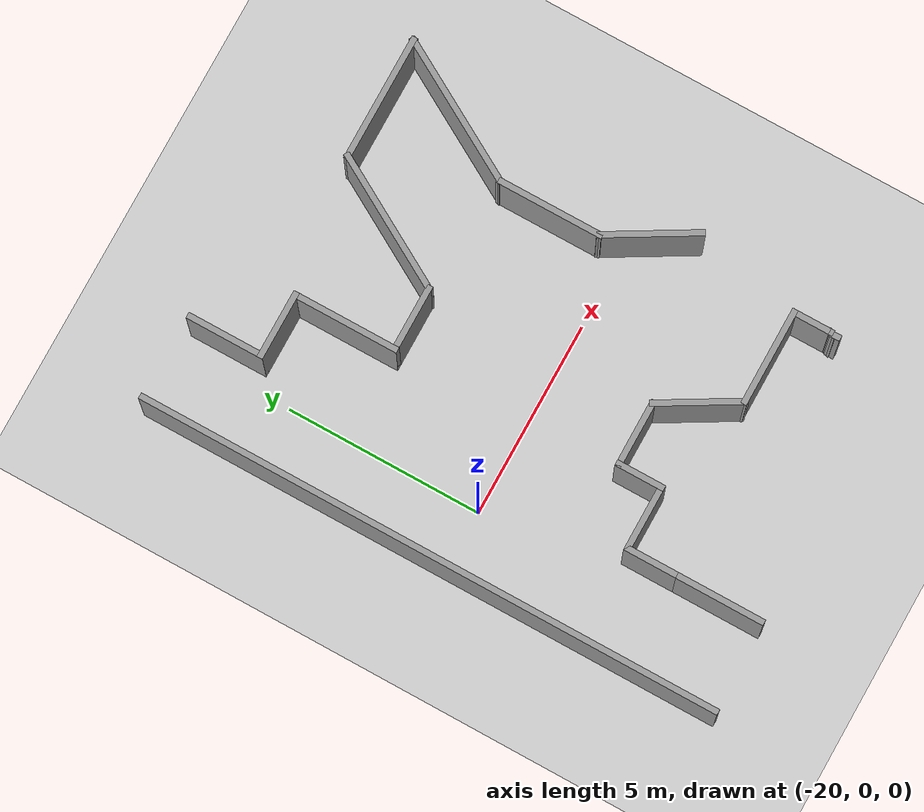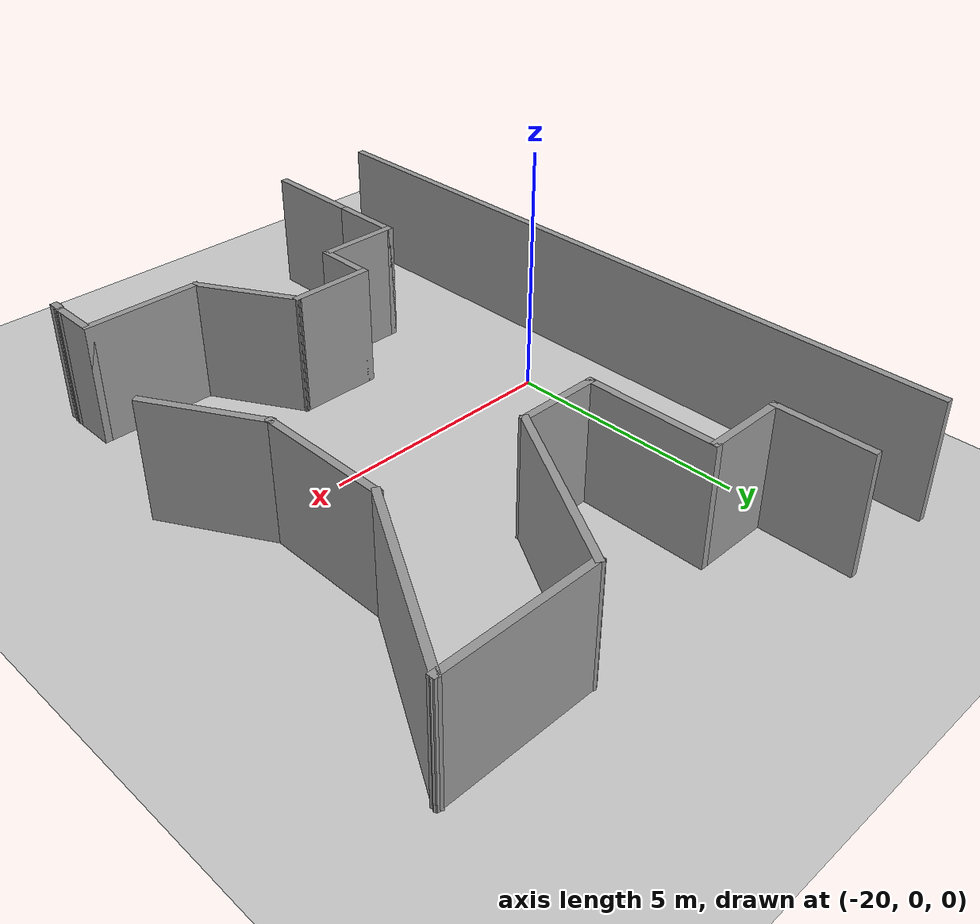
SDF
<sdf version="1.7">
 <world name="default">
  <model name="ground_plane">
   <static>1</static>
   <link name="link">
    <collision name="collision">
     <geometry><plane><normal>0 0 1</normal><size>100 100</size></plane></geometry>
     <surface>
      <contact><collide_bitmask>65535</collide_bitmask></contact>
      <friction><ode><mu>100</mu><mu2>50</mu2></ode></friction>
     </surface>
    </collision>
    <visual name="visual">
     <cast_shadows>0</cast_shadows>
     <geometry><plane><normal>0 0 1</normal><size>100 100</size></plane></geometry>
     <material>
      <script><uri>file://media/materials/scripts/gazebo.material</uri><name>Gazebo/Grey</name></script>
     </material>
    </visual>
   </link>
  </model>
  <model name="cubot">
   <link name="Wall_125">
    <pose>-13.925 -0.04968 0 0 0 -1.5708</pose>
    <visual name="Wall_125_Visual">
     <pose>0 0 1.25 0 -0 0</pose>
     <geometry><box><size>15 0.15 2.5</size></box></geometry>
     <material>
      <script><uri>file://media/materials/scripts/gazebo.material</uri><name>Gazebo/Grey</name></script>
      <ambient>1 1 1 1</ambient>
      <shader type="pixel"/>
     </material>
     <meta><layer>0</layer></meta>
    </visual>
    <collision name="Wall_125_Collision">
     <pose>0 0 1.25 0 -0 0</pose>
     <geometry><box><size>15 0.15 2.5</size></box></geometry>
     <surface>
      <friction>
       <ode><mu>1</mu><mu2>1</mu2><fdir1>0 0 0</fdir1><slip1>0</slip1><slip2>0</slip2></ode>
       <torsional>
        <coefficient>1</coefficient>
        <patch_radius>0</patch_radius>
        <surface_radius>0</surface_radius>
        <use_patch_radius>1</use_patch_radius>
        <ode><slip>0</slip></ode>
       </torsional>
      </friction>
      <bounce><restitution_coefficient>0</restitution_coefficient><threshold>1e+06</threshold></bounce>
      <contact>
       <collide_without_contact>0</collide_without_contact>
       <collide_without_contact_bitmask>1</collide_without_contact_bitmask>
       <collide_bitmask>1</collide_bitmask>
       <ode>
        <soft_cfm>0</soft_cfm>
        <soft_erp>0.2</soft_erp>
        <kp>1e+13</kp>
        <kd>1</kd>
        <max_vel>0.01</max_vel>
        <min_depth>0</min_depth>
       </ode>
       <bullet>
        <split_impulse>1</split_impulse>
        <split_impulse_penetration_threshold>-0.01</split_impulse_penetration_threshold>
        <soft_cfm>0</soft_cfm>
        <soft_erp>0.2</soft_erp>
        <kp>1e+13</kp>
        <kd>1</kd>
       </bullet>
      </contact>
     </surface>
    </collision>
   </link>
   <link name="Wall_126">
    <pose>-11.7781 6.41129 0 0 0 -1.5708</pose>
    <visual name="Wall_126_Visual">
     <pose>0 0 1.25 0 -0 0</pose>
     <geometry><box><size>2 0.15 2.5</size></box></geometry>
     <material>
      <script><uri>file://media/materials/scripts/gazebo.material</uri><name>Gazebo/Grey</name></script>
      <ambient>1 1 1 1</ambient>
      <shader type="pixel"/>
     </material>
     <meta><layer>0</layer></meta>
    </visual>
    <collision name="Wall_126_Collision">
     <pose>0 0 1.25 0 -0 0</pose>
     <geometry><box><size>2 0.15 2.5</size></box></geometry>
     <surface>
      <friction>
       <ode><mu>1</mu><mu2>1</mu2><fdir1>0 0 0</fdir1><slip1>0</slip1><slip2>0</slip2></ode>
       <torsional>
        <coefficient>1</coefficient>
        <patch_radius>0</patch_radius>
        <surface_radius>0</surface_radius>
        <use_patch_radius>1</use_patch_radius>
        <ode><slip>0</slip></ode>
       </torsional>
      </friction>
      <bounce><restitution_coefficient>0</restitution_coefficient><threshold>1e+06</threshold></bounce>
      <contact>
       <collide_without_contact>0</collide_without_contact>
       <collide_without_contact_bitmask>1</collide_without_contact_bitmask>
       <collide_bitmask>1</collide_bitmask>
       <ode>
        <soft_cfm>0</soft_cfm>
        <soft_erp>0.2</soft_erp>
        <kp>1e+13</kp>
        <kd>1</kd>
        <max_vel>0.01</max_vel>
        <min_depth>0</min_depth>
       </ode>
       <bullet>
        <split_impulse>1</split_impulse>
        <split_impulse_penetration_threshold>-0.01</split_impulse_penetration_threshold>
        <soft_cfm>0</soft_cfm>
        <soft_erp>0.2</soft_erp>
        <kp>1e+13</kp>
        <kd>1</kd>
       </bullet>
      </contact>
     </surface>
    </collision>
   </link>
   <link name="Wall_127">
    <pose>-10.9781 5.48629 0 0 -0 0</pose>
    <visual name="Wall_127_Visual">
     <pose>0 0 1.25 0 -0 0</pose>
     <geometry><box><size>1.75 0.15 2.5</size></box></geometry>
     <material>
      <script><uri>file://media/materials/scripts/gazebo.material</uri><name>Gazebo/Grey</name></script>
      <ambient>1 1 1 1</ambient>
      <shader type="pixel"/>
     </material>
     <meta><layer>0</layer></meta>
    </visual>
    <collision name="Wall_127_Collision">
     <pose>0 0 1.25 0 -0 0</pose>
     <geometry><box><size>1.75 0.15 2.5</size></box></geometry>
     <surface>
      <friction>
       <ode><mu>1</mu><mu2>1</mu2><fdir1>0 0 0</fdir1><slip1>0</slip1><slip2>0</slip2></ode>
       <torsional>
        <coefficient>1</coefficient>
        <patch_radius>0</patch_radius>
        <surface_radius>0</surface_radius>
        <use_patch_radius>1</use_patch_radius>
        <ode><slip>0</slip></ode>
       </torsional>
      </friction>
      <bounce><restitution_coefficient>0</restitution_coefficient><threshold>1e+06</threshold></bounce>
      <contact>
       <collide_without_contact>0</collide_without_contact>
       <collide_without_contact_bitmask>1</collide_without_contact_bitmask>
       <collide_bitmask>1</collide_bitmask>
       <ode>
        <soft_cfm>0</soft_cfm>
        <soft_erp>0.2</soft_erp>
        <kp>1e+13</kp>
        <kd>1</kd>
        <max_vel>0.01</max_vel>
        <min_depth>0</min_depth>
       </ode>
       <bullet>
        <split_impulse>1</split_impulse>
        <split_impulse_penetration_threshold>-0.01</split_impulse_penetration_threshold>
        <soft_cfm>0</soft_cfm>
        <soft_erp>0.2</soft_erp>
        <kp>1e+13</kp>
        <kd>1</kd>
       </bullet>
      </contact>
     </surface>
    </collision>
   </link>
   <link name="Wall_128">
    <pose>-10.1781 4.18629 0 0 0 -1.5708</pose>
    <visual name="Wall_128_Visual">
     <pose>0 0 1.25 0 -0 0</pose>
     <geometry><box><size>2.75 0.15 2.5</size></box></geometry>
     <material>
      <script><uri>file://media/materials/scripts/gazebo.material</uri><name>Gazebo/Grey</name></script>
      <ambient>1 1 1 1</ambient>
      <shader type="pixel"/>
     </material>
     <meta><layer>0</layer></meta>
    </visual>
    <collision name="Wall_128_Collision">
     <pose>0 0 1.25 0 -0 0</pose>
     <geometry><box><size>2.75 0.15 2.5</size></box></geometry>
     <surface>
      <friction>
       <ode><mu>1</mu><mu2>1</mu2><fdir1>0 0 0</fdir1><slip1>0</slip1><slip2>0</slip2></ode>
       <torsional>
        <coefficient>1</coefficient>
        <patch_radius>0</patch_radius>
        <surface_radius>0</surface_radius>
        <use_patch_radius>1</use_patch_radius>
        <ode><slip>0</slip></ode>
       </torsional>
      </friction>
      <bounce><restitution_coefficient>0</restitution_coefficient><threshold>1e+06</threshold></bounce>
      <contact>
       <collide_without_contact>0</collide_without_contact>
       <collide_without_contact_bitmask>1</collide_without_contact_bitmask>
       <collide_bitmask>1</collide_bitmask>
       <ode>
        <soft_cfm>0</soft_cfm>
        <soft_erp>0.2</soft_erp>
        <kp>1e+13</kp>
        <kd>1</kd>
        <max_vel>0.01</max_vel>
        <min_depth>0</min_depth>
       </ode>
       <bullet>
        <split_impulse>1</split_impulse>
        <split_impulse_penetration_threshold>-0.01</split_impulse_penetration_threshold>
        <soft_cfm>0</soft_cfm>
        <soft_erp>0.2</soft_erp>
        <kp>1e+13</kp>
        <kd>1</kd>
       </bullet>
      </contact>
     </surface>
    </collision>
   </link>
   <link name="Wall_129">
    <pose>-9.37808 2.88629 0 0 -0 0</pose>
    <visual name="Wall_129_Visual">
     <pose>0 0 1.25 0 -0 0</pose>
     <geometry><box><size>1.75 0.15 2.5</size></box></geometry>
     <material>
      <script><uri>file://media/materials/scripts/gazebo.material</uri><name>Gazebo/Grey</name></script>
      <ambient>1 1 1 1</ambient>
      <shader type="pixel"/>
     </material>
     <meta><layer>0</layer></meta>
    </visual>
    <collision name="Wall_129_Collision">
     <pose>0 0 1.25 0 -0 0</pose>
     <geometry><box><size>1.75 0.15 2.5</size></box></geometry>
     <surface>
      <friction>
       <ode><mu>1</mu><mu2>1</mu2><fdir1>0 0 0</fdir1><slip1>0</slip1><slip2>0</slip2></ode>
       <torsional>
        <coefficient>1</coefficient>
        <patch_radius>0</patch_radius>
        <surface_radius>0</surface_radius>
        <use_patch_radius>1</use_patch_radius>
        <ode><slip>0</slip></ode>
       </torsional>
      </friction>
      <bounce><restitution_coefficient>0</restitution_coefficient><threshold>1e+06</threshold></bounce>
      <contact>
       <collide_without_contact>0</collide_without_contact>
       <collide_without_contact_bitmask>1</collide_without_contact_bitmask>
       <collide_bitmask>1</collide_bitmask>
       <ode>
        <soft_cfm>0</soft_cfm>
        <soft_erp>0.2</soft_erp>
        <kp>1e+13</kp>
        <kd>1</kd>
        <max_vel>0.01</max_vel>
        <min_depth>0</min_depth>
       </ode>
       <bullet>
        <split_impulse>1</split_impulse>
        <split_impulse_penetration_threshold>-0.01</split_impulse_penetration_threshold>
        <soft_cfm>0</soft_cfm>
        <soft_erp>0.2</soft_erp>
        <kp>1e+13</kp>
        <kd>1</kd>
       </bullet>
      </contact>
     </surface>
    </collision>
   </link>
   <link name="Wall_130">
    <pose>-7.67808 4.44513 0 0 -0 1.0472</pose>
    <visual name="Wall_130_Visual">
     <pose>0 0 1.25 0 -0 0</pose>
     <geometry><box><size>3.75 0.15 2.5</size></box></geometry>
     <material>
      <script><uri>file://media/materials/scripts/gazebo.material</uri><name>Gazebo/Grey</name></script>
      <ambient>1 1 1 1</ambient>
      <shader type="pixel"/>
     </material>
     <meta><layer>0</layer></meta>
    </visual>
    <collision name="Wall_130_Collision">
     <pose>0 0 1.25 0 -0 0</pose>
     <geometry><box><size>3.75 0.15 2.5</size></box></geometry>
     <surface>
      <friction>
       <ode><mu>1</mu><mu2>1</mu2><fdir1>0 0 0</fdir1><slip1>0</slip1><slip2>0</slip2></ode>
       <torsional>
        <coefficient>1</coefficient>
        <patch_radius>0</patch_radius>
        <surface_radius>0</surface_radius>
        <use_patch_radius>1</use_patch_radius>
        <ode><slip>0</slip></ode>
       </torsional>
      </friction>
      <bounce><restitution_coefficient>0</restitution_coefficient><threshold>1e+06</threshold></bounce>
      <contact>
       <collide_without_contact>0</collide_without_contact>
       <collide_without_contact_bitmask>1</collide_without_contact_bitmask>
       <collide_bitmask>1</collide_bitmask>
       <ode>
        <soft_cfm>0</soft_cfm>
        <soft_erp>0.2</soft_erp>
        <kp>1e+13</kp>
        <kd>1</kd>
        <max_vel>0.01</max_vel>
        <min_depth>0</min_depth>
       </ode>
       <bullet>
        <split_impulse>1</split_impulse>
        <split_impulse_penetration_threshold>-0.01</split_impulse_penetration_threshold>
        <soft_cfm>0</soft_cfm>
        <soft_erp>0.2</soft_erp>
        <kp>1e+13</kp>
        <kd>1</kd>
       </bullet>
      </contact>
     </surface>
    </collision>
   </link>
   <link name="Wall_131">
    <pose>-5.22808 6.00398 0 0 -0 0</pose>
    <visual name="Wall_131_Visual">
     <pose>0 0 1.25 0 -0 0</pose>
     <geometry><box><size>3.25 0.15 2.5</size></box></geometry>
     <material>
      <script><uri>file://media/materials/scripts/gazebo.material</uri><name>Gazebo/Grey</name></script>
      <ambient>1 1 1 1</ambient>
      <shader type="pixel"/>
     </material>
     <meta><layer>0</layer></meta>
    </visual>
    <collision name="Wall_131_Collision">
     <pose>0 0 1.25 0 -0 0</pose>
     <geometry><box><size>3.25 0.15 2.5</size></box></geometry>
     <surface>
      <friction>
       <ode><mu>1</mu><mu2>1</mu2><fdir1>0 0 0</fdir1><slip1>0</slip1><slip2>0</slip2></ode>
       <torsional>
        <coefficient>1</coefficient>
        <patch_radius>0</patch_radius>
        <surface_radius>0</surface_radius>
        <use_patch_radius>1</use_patch_radius>
        <ode><slip>0</slip></ode>
       </torsional>
      </friction>
      <bounce><restitution_coefficient>0</restitution_coefficient><threshold>1e+06</threshold></bounce>
      <contact>
       <collide_without_contact>0</collide_without_contact>
       <collide_without_contact_bitmask>1</collide_without_contact_bitmask>
       <collide_bitmask>1</collide_bitmask>
       <ode>
        <soft_cfm>0</soft_cfm>
        <soft_erp>0.2</soft_erp>
        <kp>1e+13</kp>
        <kd>1</kd>
        <max_vel>0.01</max_vel>
        <min_depth>0</min_depth>
       </ode>
       <bullet>
        <split_impulse>1</split_impulse>
        <split_impulse_penetration_threshold>-0.01</split_impulse_penetration_threshold>
        <soft_cfm>0</soft_cfm>
        <soft_erp>0.2</soft_erp>
        <kp>1e+13</kp>
        <kd>1</kd>
       </bullet>
      </contact>
     </surface>
    </collision>
   </link>
   <link name="Wall_132">
    <pose>-4.64058 4.33688 0 0 0 -2.0944</pose>
    <visual name="Wall_132_Visual">
     <pose>0 0 1.25 0 -0 0</pose>
     <geometry><box><size>4 0.15 2.5</size></box></geometry>
     <material>
      <script><uri>file://media/materials/scripts/gazebo.material</uri><name>Gazebo/Grey</name></script>
      <ambient>1 1 1 1</ambient>
      <shader type="pixel"/>
     </material>
     <meta><layer>0</layer></meta>
    </visual>
    <collision name="Wall_132_Collision">
     <pose>0 0 1.25 0 -0 0</pose>
     <geometry><box><size>4 0.15 2.5</size></box></geometry>
     <surface>
      <friction>
       <ode><mu>1</mu><mu2>1</mu2><fdir1>0 0 0</fdir1><slip1>0</slip1><slip2>0</slip2></ode>
       <torsional>
        <coefficient>1</coefficient>
        <patch_radius>0</patch_radius>
        <surface_radius>0</surface_radius>
        <use_patch_radius>1</use_patch_radius>
        <ode><slip>0</slip></ode>
       </torsional>
      </friction>
      <bounce><restitution_coefficient>0</restitution_coefficient><threshold>1e+06</threshold></bounce>
      <contact>
       <collide_without_contact>0</collide_without_contact>
       <collide_without_contact_bitmask>1</collide_without_contact_bitmask>
       <collide_bitmask>1</collide_bitmask>
       <ode>
        <soft_cfm>0</soft_cfm>
        <soft_erp>0.2</soft_erp>
        <kp>1e+13</kp>
        <kd>1</kd>
        <max_vel>0.01</max_vel>
        <min_depth>0</min_depth>
       </ode>
       <bullet>
        <split_impulse>1</split_impulse>
        <split_impulse_penetration_threshold>-0.01</split_impulse_penetration_threshold>
        <soft_cfm>0</soft_cfm>
        <soft_erp>0.2</soft_erp>
        <kp>1e+13</kp>
        <kd>1</kd>
       </bullet>
      </contact>
     </surface>
    </collision>
   </link>
   <link name="Wall_133">
    <pose>-5.60308 1.36978 0 0 0 -1.5708</pose>
    <visual name="Wall_133_Visual">
     <pose>0 0 1.25 0 -0 0</pose>
     <geometry><box><size>2.75 0.15 2.5</size></box></geometry>
     <material>
      <script><uri>file://media/materials/scripts/gazebo.material</uri><name>Gazebo/Grey</name></script>
      <ambient>1 1 1 1</ambient>
      <shader type="pixel"/>
     </material>
     <meta><layer>0</layer></meta>
    </visual>
    <collision name="Wall_133_Collision">
     <pose>0 0 1.25 0 -0 0</pose>
     <geometry><box><size>2.75 0.15 2.5</size></box></geometry>
     <surface>
      <friction>
       <ode><mu>1</mu><mu2>1</mu2><fdir1>0 0 0</fdir1><slip1>0</slip1><slip2>0</slip2></ode>
       <torsional>
        <coefficient>1</coefficient>
        <patch_radius>0</patch_radius>
        <surface_radius>0</surface_radius>
        <use_patch_radius>1</use_patch_radius>
        <ode><slip>0</slip></ode>
       </torsional>
      </friction>
      <bounce><restitution_coefficient>0</restitution_coefficient><threshold>1e+06</threshold></bounce>
      <contact>
       <collide_without_contact>0</collide_without_contact>
       <collide_without_contact_bitmask>1</collide_without_contact_bitmask>
       <collide_bitmask>1</collide_bitmask>
       <ode>
        <soft_cfm>0</soft_cfm>
        <soft_erp>0.2</soft_erp>
        <kp>1e+13</kp>
        <kd>1</kd>
        <max_vel>0.01</max_vel>
        <min_depth>0</min_depth>
       </ode>
       <bullet>
        <split_impulse>1</split_impulse>
        <split_impulse_penetration_threshold>-0.01</split_impulse_penetration_threshold>
        <soft_cfm>0</soft_cfm>
        <soft_erp>0.2</soft_erp>
        <kp>1e+13</kp>
        <kd>1</kd>
       </bullet>
      </contact>
     </surface>
    </collision>
   </link>
   <link name="Wall_134">
    <pose>-5.01558 -0.947797 0 0 0 -1.0472</pose>
    <visual name="Wall_134_Visual">
     <pose>0 0 1.25 0 -0 0</pose>
     <geometry><box><size>2.5 0.15 2.5</size></box></geometry>
     <material>
      <script><uri>file://media/materials/scripts/gazebo.material</uri><name>Gazebo/Grey</name></script>
      <ambient>1 1 1 1</ambient>
      <shader type="pixel"/>
     </material>
     <meta><layer>0</layer></meta>
    </visual>
    <collision name="Wall_134_Collision">
     <pose>0 0 1.25 0 -0 0</pose>
     <geometry><box><size>2.5 0.15 2.5</size></box></geometry>
     <surface>
      <friction>
       <ode><mu>1</mu><mu2>1</mu2><fdir1>0 0 0</fdir1><slip1>0</slip1><slip2>0</slip2></ode>
       <torsional>
        <coefficient>1</coefficient>
        <patch_radius>0</patch_radius>
        <surface_radius>0</surface_radius>
        <use_patch_radius>1</use_patch_radius>
        <ode><slip>0</slip></ode>
       </torsional>
      </friction>
      <bounce><restitution_coefficient>0</restitution_coefficient><threshold>1e+06</threshold></bounce>
      <contact>
       <collide_without_contact>0</collide_without_contact>
       <collide_without_contact_bitmask>1</collide_without_contact_bitmask>
       <collide_bitmask>1</collide_bitmask>
       <ode>
        <soft_cfm>0</soft_cfm>
        <soft_erp>0.2</soft_erp>
        <kp>1e+13</kp>
        <kd>1</kd>
        <max_vel>0.01</max_vel>
        <min_depth>0</min_depth>
       </ode>
       <bullet>
        <split_impulse>1</split_impulse>
        <split_impulse_penetration_threshold>-0.01</split_impulse_penetration_threshold>
        <soft_cfm>0</soft_cfm>
        <soft_erp>0.2</soft_erp>
        <kp>1e+13</kp>
        <kd>1</kd>
       </bullet>
      </contact>
     </surface>
    </collision>
   </link>
   <link name="Wall_141">
    <pose>-11.6355 -6.36384 0 0 -0 1.5708</pose>
    <visual name="Wall_141_Visual">
     <pose>0 0 1.25 0 -0 0</pose>
     <geometry><box><size>2.25 0.15 2.5</size></box></geometry>
     <material>
      <script><uri>file://media/materials/scripts/gazebo.material</uri><name>Gazebo/Grey</name></script>
      <ambient>1 1 1 1</ambient>
      <shader type="pixel"/>
     </material>
     <meta><layer>0</layer></meta>
    </visual>
    <collision name="Wall_141_Collision">
     <pose>0 0 1.25 0 -0 0</pose>
     <geometry><box><size>2.25 0.15 2.5</size></box></geometry>
     <surface>
      <friction>
       <ode><mu>1</mu><mu2>1</mu2><fdir1>0 0 0</fdir1><slip1>0</slip1><slip2>0</slip2></ode>
       <torsional>
        <coefficient>1</coefficient>
        <patch_radius>0</patch_radius>
        <surface_radius>0</surface_radius>
        <use_patch_radius>1</use_patch_radius>
        <ode><slip>0</slip></ode>
       </torsional>
      </friction>
      <bounce><restitution_coefficient>0</restitution_coefficient><threshold>1e+06</threshold></bounce>
      <contact>
       <collide_without_contact>0</collide_without_contact>
       <collide_without_contact_bitmask>1</collide_without_contact_bitmask>
       <collide_bitmask>1</collide_bitmask>
       <ode>
        <soft_cfm>0</soft_cfm>
        <soft_erp>0.2</soft_erp>
        <kp>1e+13</kp>
        <kd>1</kd>
        <max_vel>0.01</max_vel>
        <min_depth>0</min_depth>
       </ode>
       <bullet>
        <split_impulse>1</split_impulse>
        <split_impulse_penetration_threshold>-0.01</split_impulse_penetration_threshold>
        <soft_cfm>0</soft_cfm>
        <soft_erp>0.2</soft_erp>
        <kp>1e+13</kp>
        <kd>1</kd>
       </bullet>
      </contact>
     </surface>
    </collision>
   </link>
   <link name="Wall_142">
    <pose>-11.6355 -4.63884 0 0 -0 1.5708</pose>
    <visual name="Wall_142_Visual">
     <pose>0 0 1.25 0 -0 0</pose>
     <geometry><box><size>1.5 0.15 2.5</size></box></geometry>
     <material>
      <script><uri>file://media/materials/scripts/gazebo.material</uri><name>Gazebo/Grey</name></script>
      <ambient>1 1 1 1</ambient>
      <shader type="pixel"/>
     </material>
     <meta><layer>0</layer></meta>
    </visual>
    <collision name="Wall_142_Collision">
     <pose>0 0 1.25 0 -0 0</pose>
     <geometry><box><size>1.5 0.15 2.5</size></box></geometry>
     <surface>
      <friction>
       <ode><mu>1</mu><mu2>1</mu2><fdir1>0 0 0</fdir1><slip1>0</slip1><slip2>0</slip2></ode>
       <torsional>
        <coefficient>1</coefficient>
        <patch_radius>0</patch_radius>
        <surface_radius>0</surface_radius>
        <use_patch_radius>1</use_patch_radius>
        <ode><slip>0</slip></ode>
       </torsional>
      </friction>
      <bounce><restitution_coefficient>0</restitution_coefficient><threshold>1e+06</threshold></bounce>
      <contact>
       <collide_without_contact>0</collide_without_contact>
       <collide_without_contact_bitmask>1</collide_without_contact_bitmask>
       <collide_bitmask>1</collide_bitmask>
       <ode>
        <soft_cfm>0</soft_cfm>
        <soft_erp>0.2</soft_erp>
        <kp>1e+13</kp>
        <kd>1</kd>
        <max_vel>0.01</max_vel>
        <min_depth>0</min_depth>
       </ode>
       <bullet>
        <split_impulse>1</split_impulse>
        <split_impulse_penetration_threshold>-0.01</split_impulse_penetration_threshold>
        <soft_cfm>0</soft_cfm>
        <soft_erp>0.2</soft_erp>
        <kp>1e+13</kp>
        <kd>1</kd>
       </bullet>
      </contact>
     </surface>
    </collision>
   </link>
   <link name="Wall_143">
    <pose>-10.8355 -3.96384 0 0 -0 0</pose>
    <visual name="Wall_143_Visual">
     <pose>0 0 1.25 0 -0 0</pose>
     <geometry><box><size>1.75 0.15 2.5</size></box></geometry>
     <material>
      <script><uri>file://media/materials/scripts/gazebo.material</uri><name>Gazebo/Grey</name></script>
      <ambient>1 1 1 1</ambient>
      <shader type="pixel"/>
     </material>
     <meta><layer>0</layer></meta>
    </visual>
    <collision name="Wall_143_Collision">
     <pose>0 0 1.25 0 -0 0</pose>
     <geometry><box><size>1.75 0.15 2.5</size></box></geometry>
     <surface>
      <friction>
       <ode><mu>1</mu><mu2>1</mu2><fdir1>0 0 0</fdir1><slip1>0</slip1><slip2>0</slip2></ode>
       <torsional>
        <coefficient>1</coefficient>
        <patch_radius>0</patch_radius>
        <surface_radius>0</surface_radius>
        <use_patch_radius>1</use_patch_radius>
        <ode><slip>0</slip></ode>
       </torsional>
      </friction>
      <bounce><restitution_coefficient>0</restitution_coefficient><threshold>1e+06</threshold></bounce>
      <contact>
       <collide_without_contact>0</collide_without_contact>
       <collide_without_contact_bitmask>1</collide_without_contact_bitmask>
       <collide_bitmask>1</collide_bitmask>
       <ode>
        <soft_cfm>0</soft_cfm>
        <soft_erp>0.2</soft_erp>
        <kp>1e+13</kp>
        <kd>1</kd>
        <max_vel>0.01</max_vel>
        <min_depth>0</min_depth>
       </ode>
       <bullet>
        <split_impulse>1</split_impulse>
        <split_impulse_penetration_threshold>-0.01</split_impulse_penetration_threshold>
        <soft_cfm>0</soft_cfm>
        <soft_erp>0.2</soft_erp>
        <kp>1e+13</kp>
        <kd>1</kd>
       </bullet>
      </contact>
     </surface>
    </collision>
   </link>
   <link name="Wall_144">
    <pose>-10.0355 -3.41384 0 0 -0 1.5708</pose>
    <visual name="Wall_144_Visual">
     <pose>0 0 1.25 0 -0 0</pose>
     <geometry><box><size>1.25 0.15 2.5</size></box></geometry>
     <material>
      <script><uri>file://media/materials/scripts/gazebo.material</uri><name>Gazebo/Grey</name></script>
      <ambient>1 1 1 1</ambient>
      <shader type="pixel"/>
     </material>
     <meta><layer>0</layer></meta>
    </visual>
    <collision name="Wall_144_Collision">
     <pose>0 0 1.25 0 -0 0</pose>
     <geometry><box><size>1.25 0.15 2.5</size></box></geometry>
     <surface>
      <friction>
       <ode><mu>1</mu><mu2>1</mu2><fdir1>0 0 0</fdir1><slip1>0</slip1><slip2>0</slip2></ode>
       <torsional>
        <coefficient>1</coefficient>
        <patch_radius>0</patch_radius>
        <surface_radius>0</surface_radius>
        <use_patch_radius>1</use_patch_radius>
        <ode><slip>0</slip></ode>
       </torsional>
      </friction>
      <bounce><restitution_coefficient>0</restitution_coefficient><threshold>1e+06</threshold></bounce>
      <contact>
       <collide_without_contact>0</collide_without_contact>
       <collide_without_contact_bitmask>1</collide_without_contact_bitmask>
       <collide_bitmask>1</collide_bitmask>
       <ode>
        <soft_cfm>0</soft_cfm>
        <soft_erp>0.2</soft_erp>
        <kp>1e+13</kp>
        <kd>1</kd>
        <max_vel>0.01</max_vel>
        <min_depth>0</min_depth>
       </ode>
       <bullet>
        <split_impulse>1</split_impulse>
        <split_impulse_penetration_threshold>-0.01</split_impulse_penetration_threshold>
        <soft_cfm>0</soft_cfm>
        <soft_erp>0.2</soft_erp>
        <kp>1e+13</kp>
        <kd>1</kd>
       </bullet>
      </contact>
     </surface>
    </collision>
   </link>
   <link name="Wall_145">
    <pose>-9.2355 -2.86384 0 0 -0 0</pose>
    <visual name="Wall_145_Visual">
     <pose>0 0 1.25 0 -0 0</pose>
     <geometry><box><size>1.75 0.15 2.5</size></box></geometry>
     <material>
      <script><uri>file://media/materials/scripts/gazebo.material</uri><name>Gazebo/Grey</name></script>
      <ambient>1 1 1 1</ambient>
      <shader type="pixel"/>
     </material>
     <meta><layer>0</layer></meta>
    </visual>
    <collision name="Wall_145_Collision">
     <pose>0 0 1.25 0 -0 0</pose>
     <geometry><box><size>1.75 0.15 2.5</size></box></geometry>
     <surface>
      <friction>
       <ode><mu>1</mu><mu2>1</mu2><fdir1>0 0 0</fdir1><slip1>0</slip1><slip2>0</slip2></ode>
       <torsional>
        <coefficient>1</coefficient>
        <patch_radius>0</patch_radius>
        <surface_radius>0</surface_radius>
        <use_patch_radius>1</use_patch_radius>
        <ode><slip>0</slip></ode>
       </torsional>
      </friction>
      <bounce><restitution_coefficient>0</restitution_coefficient><threshold>1e+06</threshold></bounce>
      <contact>
       <collide_without_contact>0</collide_without_contact>
       <collide_without_contact_bitmask>1</collide_without_contact_bitmask>
       <collide_bitmask>1</collide_bitmask>
       <ode>
        <soft_cfm>0</soft_cfm>
        <soft_erp>0.2</soft_erp>
        <kp>1e+13</kp>
        <kd>1</kd>
        <max_vel>0.01</max_vel>
        <min_depth>0</min_depth>
       </ode>
       <bullet>
        <split_impulse>1</split_impulse>
        <split_impulse_penetration_threshold>-0.01</split_impulse_penetration_threshold>
        <soft_cfm>0</soft_cfm>
        <soft_erp>0.2</soft_erp>
        <kp>1e+13</kp>
        <kd>1</kd>
       </bullet>
      </contact>
     </surface>
    </collision>
   </link>
   <link name="Wall_146">
    <pose>-7.9105 -3.77316 0 0 0 -1.0472</pose>
    <visual name="Wall_146_Visual">
     <pose>0 0 1.25 0 -0 0</pose>
     <geometry><box><size>2.25 0.15 2.5</size></box></geometry>
     <material>
      <script><uri>file://media/materials/scripts/gazebo.material</uri><name>Gazebo/Grey</name></script>
      <ambient>1 1 1 1</ambient>
      <shader type="pixel"/>
     </material>
     <meta><layer>0</layer></meta>
    </visual>
    <collision name="Wall_146_Collision">
     <pose>0 0 1.25 0 -0 0</pose>
     <geometry><box><size>2.25 0.15 2.5</size></box></geometry>
     <surface>
      <friction>
       <ode><mu>1</mu><mu2>1</mu2><fdir1>0 0 0</fdir1><slip1>0</slip1><slip2>0</slip2></ode>
       <torsional>
        <coefficient>1</coefficient>
        <patch_radius>0</patch_radius>
        <surface_radius>0</surface_radius>
        <use_patch_radius>1</use_patch_radius>
        <ode><slip>0</slip></ode>
       </torsional>
      </friction>
      <bounce><restitution_coefficient>0</restitution_coefficient><threshold>1e+06</threshold></bounce>
      <contact>
       <collide_without_contact>0</collide_without_contact>
       <collide_without_contact_bitmask>1</collide_without_contact_bitmask>
       <collide_bitmask>1</collide_bitmask>
       <ode>
        <soft_cfm>0</soft_cfm>
        <soft_erp>0.2</soft_erp>
        <kp>1e+13</kp>
        <kd>1</kd>
        <max_vel>0.01</max_vel>
        <min_depth>0</min_depth>
       </ode>
       <bullet>
        <split_impulse>1</split_impulse>
        <split_impulse_penetration_threshold>-0.01</split_impulse_penetration_threshold>
        <soft_cfm>0</soft_cfm>
        <soft_erp>0.2</soft_erp>
        <kp>1e+13</kp>
        <kd>1</kd>
       </bullet>
      </contact>
     </surface>
    </collision>
   </link>
   <link name="Wall_147">
    <pose>-6.2105 -4.68249 0 0 -0 0</pose>
    <visual name="Wall_147_Visual">
     <pose>0 0 1.25 0 -0 0</pose>
     <geometry><box><size>2.5 0.15 2.5</size></box></geometry>
     <material>
      <script><uri>file://media/materials/scripts/gazebo.material</uri><name>Gazebo/Grey</name></script>
      <ambient>1 1 1 1</ambient>
      <shader type="pixel"/>
     </material>
     <meta><layer>0</layer></meta>
    </visual>
    <collision name="Wall_147_Collision">
     <pose>0 0 1.25 0 -0 0</pose>
     <geometry><box><size>2.5 0.15 2.5</size></box></geometry>
     <surface>
      <friction>
       <ode><mu>1</mu><mu2>1</mu2><fdir1>0 0 0</fdir1><slip1>0</slip1><slip2>0</slip2></ode>
       <torsional>
        <coefficient>1</coefficient>
        <patch_radius>0</patch_radius>
        <surface_radius>0</surface_radius>
        <use_patch_radius>1</use_patch_radius>
        <ode><slip>0</slip></ode>
       </torsional>
      </friction>
      <bounce><restitution_coefficient>0</restitution_coefficient><threshold>1e+06</threshold></bounce>
      <contact>
       <collide_without_contact>0</collide_without_contact>
       <collide_without_contact_bitmask>1</collide_without_contact_bitmask>
       <collide_bitmask>1</collide_bitmask>
       <ode>
        <soft_cfm>0</soft_cfm>
        <soft_erp>0.2</soft_erp>
        <kp>1e+13</kp>
        <kd>1</kd>
        <max_vel>0.01</max_vel>
        <min_depth>0</min_depth>
       </ode>
       <bullet>
        <split_impulse>1</split_impulse>
        <split_impulse_penetration_threshold>-0.01</split_impulse_penetration_threshold>
        <soft_cfm>0</soft_cfm>
        <soft_erp>0.2</soft_erp>
        <kp>1e+13</kp>
        <kd>1</kd>
       </bullet>
      </contact>
     </surface>
    </collision>
   </link>
   <link name="Wall_150">
    <pose>-5.0355 -5.10749 0 0 0 -1.5708</pose>
    <visual name="Wall_150_Visual">
     <pose>0 0 1.25 0 -0 0</pose>
     <geometry><box><size>1 0.15 2.5</size></box></geometry>
     <material>
      <script><uri>file://media/materials/scripts/gazebo.material</uri><name>Gazebo/Grey</name></script>
      <ambient>1 1 1 1</ambient>
      <shader type="pixel"/>
     </material>
     <meta><layer>0</layer></meta>
    </visual>
    <collision name="Wall_150_Collision">
     <pose>0 0 1.25 0 -0 0</pose>
     <geometry><box><size>1 0.15 2.5</size></box></geometry>
     <surface>
      <friction>
       <ode><mu>1</mu><mu2>1</mu2><fdir1>0 0 0</fdir1><slip1>0</slip1><slip2>0</slip2></ode>
       <torsional>
        <coefficient>1</coefficient>
        <patch_radius>0</patch_radius>
        <surface_radius>0</surface_radius>
        <use_patch_radius>1</use_patch_radius>
        <ode><slip>0</slip></ode>
       </torsional>
      </friction>
      <bounce><restitution_coefficient>0</restitution_coefficient><threshold>1e+06</threshold></bounce>
      <contact>
       <collide_without_contact>0</collide_without_contact>
       <collide_without_contact_bitmask>1</collide_without_contact_bitmask>
       <collide_bitmask>1</collide_bitmask>
       <ode>
        <soft_cfm>0</soft_cfm>
        <soft_erp>0.2</soft_erp>
        <kp>1e+13</kp>
        <kd>1</kd>
        <max_vel>0.01</max_vel>
        <min_depth>0</min_depth>
       </ode>
       <bullet>
        <split_impulse>1</split_impulse>
        <split_impulse_penetration_threshold>-0.01</split_impulse_penetration_threshold>
        <soft_cfm>0</soft_cfm>
        <soft_erp>0.2</soft_erp>
        <kp>1e+13</kp>
        <kd>1</kd>
       </bullet>
      </contact>
     </surface>
    </collision>
   </link>
   <link name="Wall_151">
    <pose>-5.0355 -5.58249 0 0 0 -1.5708</pose>
    <visual name="Wall_151_Visual">
     <pose>0 0 1.25 0 -0 0</pose>
     <geometry><box><size>0.25 0.15 2.5</size></box></geometry>
     <material>
      <script><uri>file://media/materials/scripts/gazebo.material</uri><name>Gazebo/Grey</name></script>
      <ambient>1 1 1 1</ambient>
      <shader type="pixel"/>
     </material>
     <meta><layer>0</layer></meta>
    </visual>
    <collision name="Wall_151_Collision">
     <pose>0 0 1.25 0 -0 0</pose>
     <geometry><box><size>0.25 0.15 2.5</size></box></geometry>
     <surface>
      <friction>
       <ode><mu>1</mu><mu2>1</mu2><fdir1>0 0 0</fdir1><slip1>0</slip1><slip2>0</slip2></ode>
       <torsional>
        <coefficient>1</coefficient>
        <patch_radius>0</patch_radius>
        <surface_radius>0</surface_radius>
        <use_patch_radius>1</use_patch_radius>
        <ode><slip>0</slip></ode>
       </torsional>
      </friction>
      <bounce><restitution_coefficient>0</restitution_coefficient><threshold>1e+06</threshold></bounce>
      <contact>
       <collide_without_contact>0</collide_without_contact>
       <collide_without_contact_bitmask>1</collide_without_contact_bitmask>
       <collide_bitmask>1</collide_bitmask>
       <ode>
        <soft_cfm>0</soft_cfm>
        <soft_erp>0.2</soft_erp>
        <kp>1e+13</kp>
        <kd>1</kd>
        <max_vel>0.01</max_vel>
        <min_depth>0</min_depth>
       </ode>
       <bullet>
        <split_impulse>1</split_impulse>
        <split_impulse_penetration_threshold>-0.01</split_impulse_penetration_threshold>
        <soft_cfm>0</soft_cfm>
        <soft_erp>0.2</soft_erp>
        <kp>1e+13</kp>
        <kd>1</kd>
       </bullet>
      </contact>
     </surface>
    </collision>
   </link>
   <link name="Wall_152">
    <pose>-5.04844 -5.68079 0 0 0 -1.8326</pose>
    <visual name="Wall_152_Visual">
     <pose>0 0 1.25 0 -0 0</pose>
     <geometry><box><size>0.25 0.15 2.5</size></box></geometry>
     <material>
      <script><uri>file://media/materials/scripts/gazebo.material</uri><name>Gazebo/Grey</name></script>
      <ambient>1 1 1 1</ambient>
      <shader type="pixel"/>
     </material>
     <meta><layer>0</layer></meta>
    </visual>
    <collision name="Wall_152_Collision">
     <pose>0 0 1.25 0 -0 0</pose>
     <geometry><box><size>0.25 0.15 2.5</size></box></geometry>
     <surface>
      <friction>
       <ode><mu>1</mu><mu2>1</mu2><fdir1>0 0 0</fdir1><slip1>0</slip1><slip2>0</slip2></ode>
       <torsional>
        <coefficient>1</coefficient>
        <patch_radius>0</patch_radius>
        <surface_radius>0</surface_radius>
        <use_patch_radius>1</use_patch_radius>
        <ode><slip>0</slip></ode>
       </torsional>
      </friction>
      <bounce><restitution_coefficient>0</restitution_coefficient><threshold>1e+06</threshold></bounce>
      <contact>
       <collide_without_contact>0</collide_without_contact>
       <collide_without_contact_bitmask>1</collide_without_contact_bitmask>
       <collide_bitmask>1</collide_bitmask>
       <ode>
        <soft_cfm>0</soft_cfm>
        <soft_erp>0.2</soft_erp>
        <kp>1e+13</kp>
        <kd>1</kd>
        <max_vel>0.01</max_vel>
        <min_depth>0</min_depth>
       </ode>
       <bullet>
        <split_impulse>1</split_impulse>
        <split_impulse_penetration_threshold>-0.01</split_impulse_penetration_threshold>
        <soft_cfm>0</soft_cfm>
        <soft_erp>0.2</soft_erp>
        <kp>1e+13</kp>
        <kd>1</kd>
       </bullet>
      </contact>
     </surface>
    </collision>
   </link>
   <link name="Wall_153">
    <pose>-5.06138 -5.77908 0 0 0 -1.5708</pose>
    <visual name="Wall_153_Visual">
     <pose>0 0 1.25 0 -0 0</pose>
     <geometry><box><size>0.25 0.15 2.5</size></box></geometry>
     <material>
      <script><uri>file://media/materials/scripts/gazebo.material</uri><name>Gazebo/Grey</name></script>
      <ambient>1 1 1 1</ambient>
      <shader type="pixel"/>
     </material>
     <meta><layer>0</layer></meta>
    </visual>
    <collision name="Wall_153_Collision">
     <pose>0 0 1.25 0 -0 0</pose>
     <geometry><box><size>0.25 0.15 2.5</size></box></geometry>
     <surface>
      <friction>
       <ode><mu>1</mu><mu2>1</mu2><fdir1>0 0 0</fdir1><slip1>0</slip1><slip2>0</slip2></ode>
       <torsional>
        <coefficient>1</coefficient>
        <patch_radius>0</patch_radius>
        <surface_radius>0</surface_radius>
        <use_patch_radius>1</use_patch_radius>
        <ode><slip>0</slip></ode>
       </torsional>
      </friction>
      <bounce><restitution_coefficient>0</restitution_coefficient><threshold>1e+06</threshold></bounce>
      <contact>
       <collide_without_contact>0</collide_without_contact>
       <collide_without_contact_bitmask>1</collide_without_contact_bitmask>
       <collide_bitmask>1</collide_bitmask>
       <ode>
        <soft_cfm>0</soft_cfm>
        <soft_erp>0.2</soft_erp>
        <kp>1e+13</kp>
        <kd>1</kd>
        <max_vel>0.01</max_vel>
        <min_depth>0</min_depth>
       </ode>
       <bullet>
        <split_impulse>1</split_impulse>
        <split_impulse_penetration_threshold>-0.01</split_impulse_penetration_threshold>
        <soft_cfm>0</soft_cfm>
        <soft_erp>0.2</soft_erp>
        <kp>1e+13</kp>
        <kd>1</kd>
       </bullet>
      </contact>
     </surface>
    </collision>
   </link>
   <static>1</static>
   <pose>-7.72706 0.447575 0 0 -0 0</pose>
  </model>
 </world>
</sdf>
